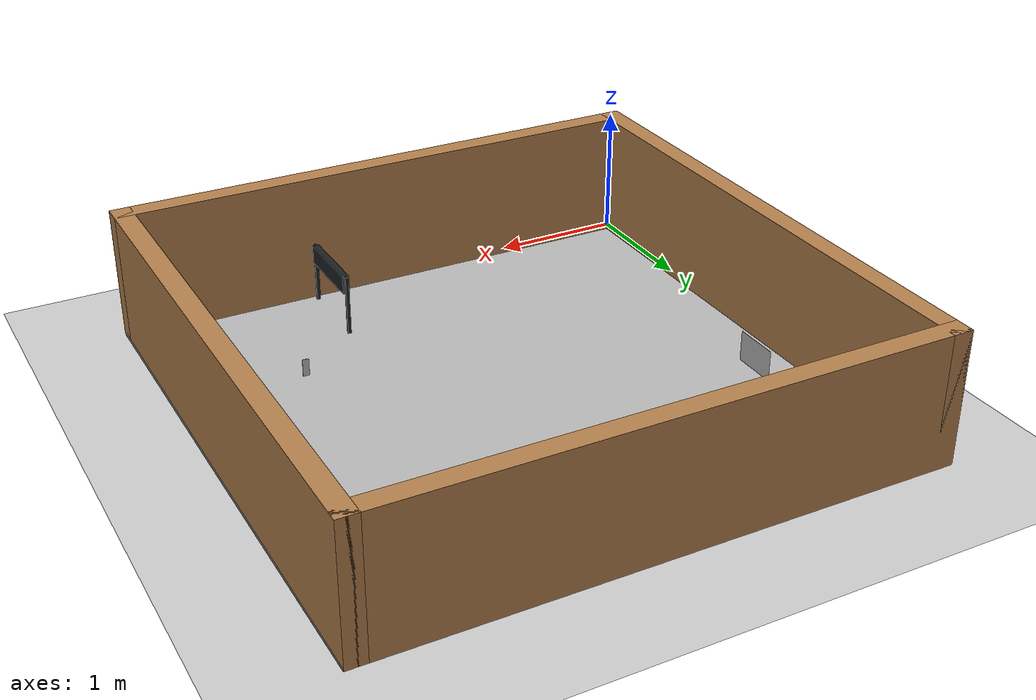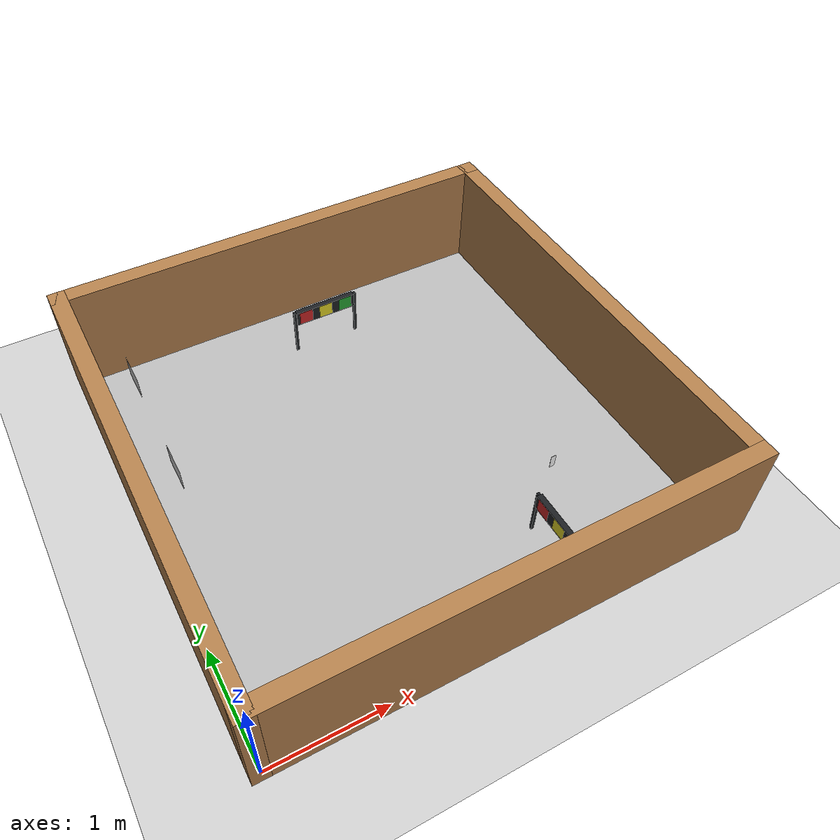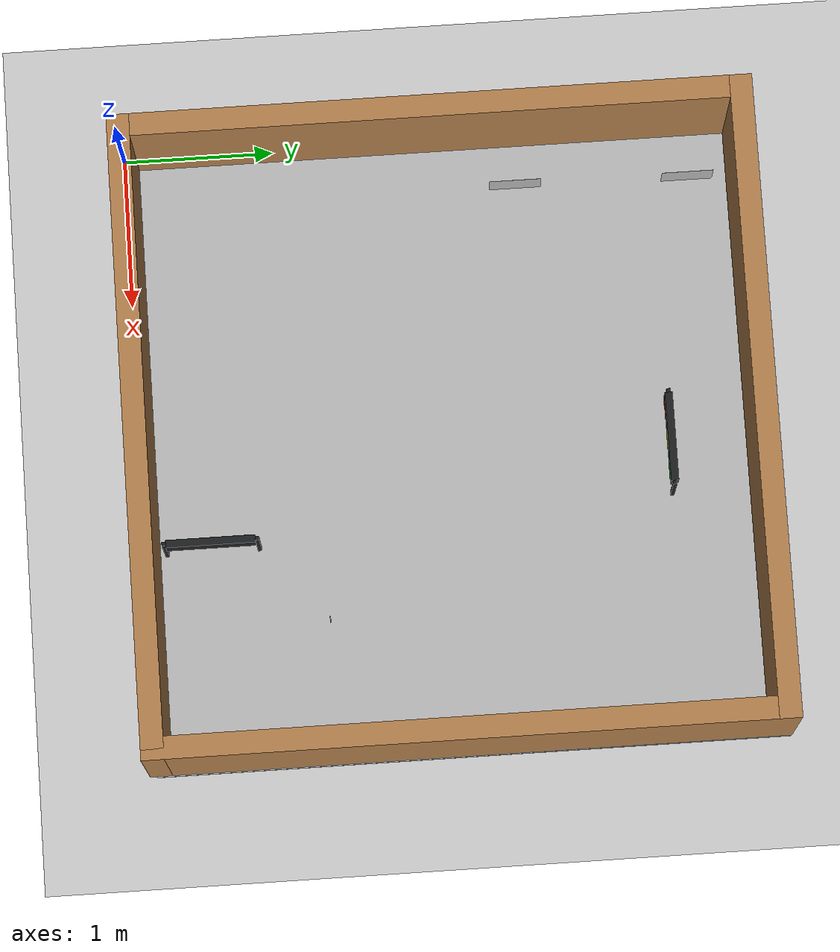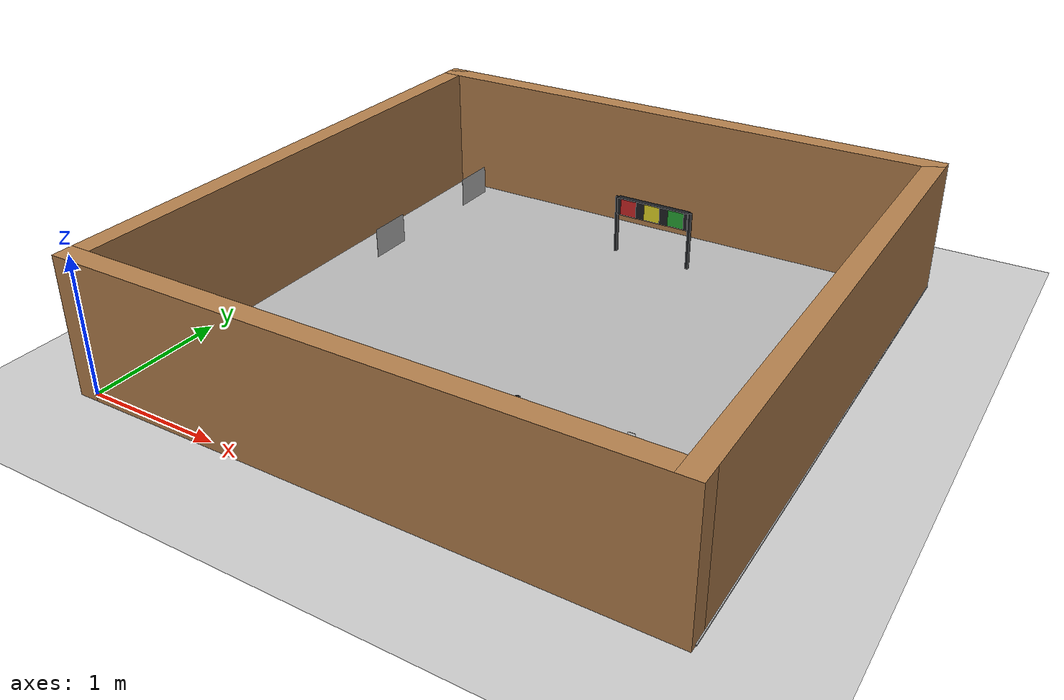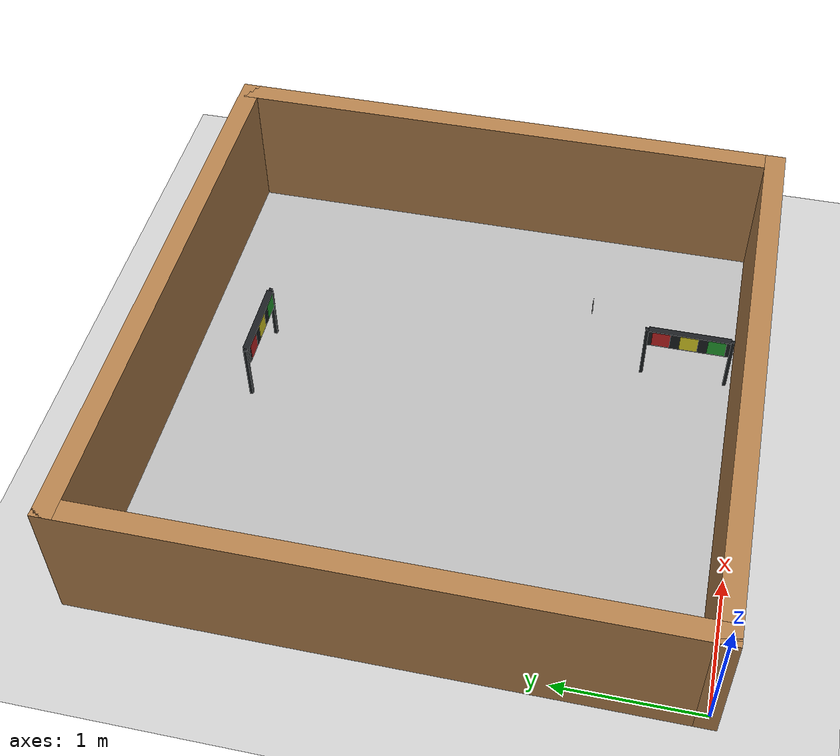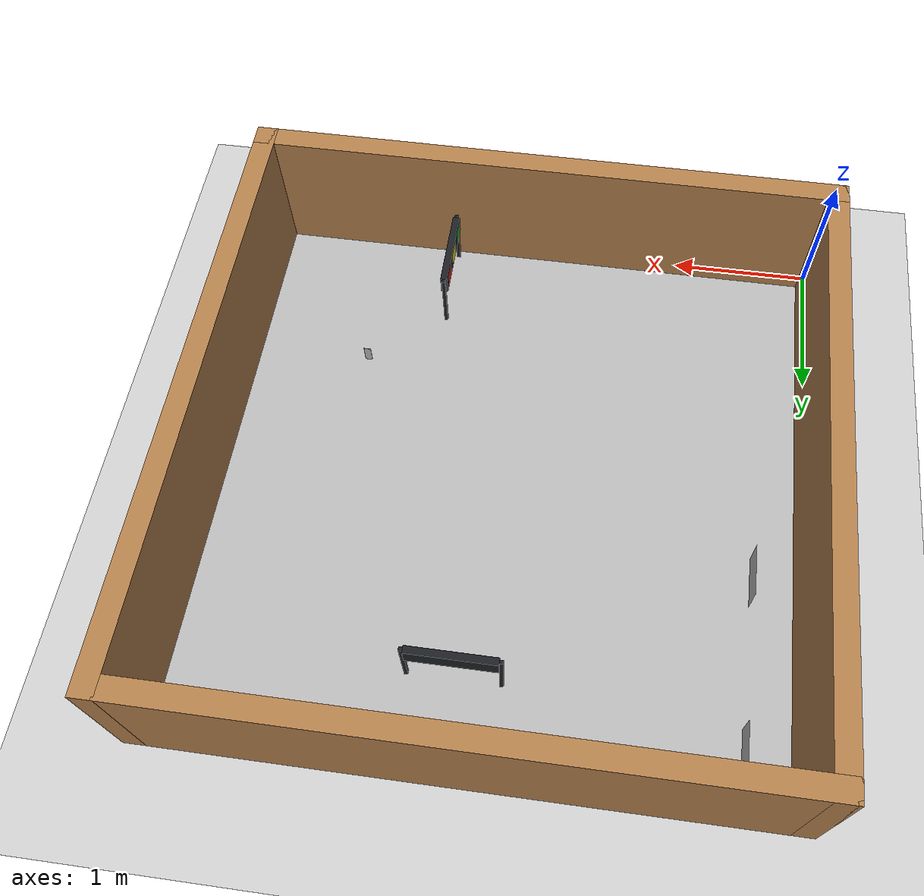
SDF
<sdf version="1.7">
 <world name="default">
  <light name="sun" type="directional">
   <pose>0 0 10 0 -0 0</pose>
   <diffuse>0.8 0.8 0.8 1</diffuse>
   <specular>0.2 0.2 0.2 1</specular>
   <attenuation>
    <range>1000</range>
    <constant>0.9</constant>
    <linear>0.01</linear>
    <quadratic>0.001</quadratic>
   </attenuation>
   <direction>-0.5 0.1 -0.9</direction>
   <spot><inner_angle>0</inner_angle><outer_angle>0</outer_angle><falloff>0</falloff></spot>
  </light>
  <light name="side_light" type="point">
   <pose>3 2 1 0 -0 0</pose>
   <diffuse>1 1 1 1</diffuse>
   <attenuation><linear>0</linear><quadratic>0</quadratic><range>6</range></attenuation>
   <direction>0 0 -1</direction>
   <spot><inner_angle>0</inner_angle><outer_angle>0</outer_angle><falloff>0</falloff></spot>
   <range>3.0</range>
  </light>
  <model name="ground_plane">
   <static>1</static>
   <link name="link">
    <collision name="collision">
     <geometry><plane><normal>0 0 1</normal><size>100 100</size></plane></geometry>
     <surface><friction><ode><mu>100</mu><mu2>50</mu2></ode></friction></surface>
    </collision>
    <visual name="visual">
     <geometry><plane><normal>0 0 1</normal><size>100 100</size></plane></geometry>
     <material>
      <script><uri>file://media/materials/scripts/gazebo.material</uri><name>Gazebo/Grey</name></script>
     </material>
    </visual>
   </link>
  </model>
  <gravity>0 0 -9.8</gravity>
  <magnetic_field>6e-06 2.3e-05 -4.2e-05</magnetic_field>
  <atmosphere type="adiabatic"/>
  <physics type="ode">
   <max_step_size>0.001</max_step_size>
   <real_time_factor>1</real_time_factor>
   <real_time_update_rate>1000</real_time_update_rate>
  </physics>
  <scene><ambient>0.4 0.4 0.4 1</ambient><background>0.7 0.7 0.7 1</background><shadows>1</shadows></scene>
  <spherical_coordinates>
   <surface_model>EARTH_WGS84</surface_model>
   <latitude_deg>0</latitude_deg>
   <longitude_deg>0</longitude_deg>
   <elevation>0</elevation>
   <heading_deg>0</heading_deg>
  </spherical_coordinates>
  <model name="square.world">
   <pose>2.04333 2.07117 0 0 -0 0</pose>
   <link name="Wall_6">
    <collision name="Wall_6_Collision">
     <geometry><box><size>4.26 0.15 1</size></box></geometry>
     <pose>0 0 0.5 0 -0 0</pose>
    </collision>
    <visual name="Wall_6_Visual">
     <pose>0 0 0.5 0 -0 0</pose>
     <geometry><box><size>4.26 0.15 1</size></box></geometry>
     <material>
      <script><uri>file://media/materials/scripts/gazebo.material</uri><name>Gazebo/Wood</name></script>
      <ambient>1 1 1 1</ambient>
     </material>
     <meta><layer>0</layer></meta>
    </visual>
    <pose>-0 2.05 0 0 -0 0</pose>
   </link>
   <link name="Wall_7">
    <collision name="Wall_7_Collision">
     <geometry><box><size>4.25 0.15 1</size></box></geometry>
     <pose>0 0 0.5 0 -0 0</pose>
    </collision>
    <visual name="Wall_7_Visual">
     <pose>0 0 0.5 0 -0 0</pose>
     <geometry><box><size>4.25 0.15 1</size></box></geometry>
     <material>
      <script><uri>file://media/materials/scripts/gazebo.material</uri><name>Gazebo/Wood</name></script>
      <ambient>1 1 1 1</ambient>
     </material>
     <meta><layer>0</layer></meta>
    </visual>
    <pose>2.055 0 0 0 -0 -1.5708</pose>
   </link>
   <link name="Wall_8">
    <collision name="Wall_8_Collision">
     <geometry><box><size>4.26 0.15 1</size></box></geometry>
     <pose>0 0 0.5 0 -0 0</pose>
    </collision>
    <visual name="Wall_8_Visual">
     <pose>0 0 0.5 0 -0 0</pose>
     <geometry><box><size>4.26 0.15 1</size></box></geometry>
     <material>
      <script><uri>file://media/materials/scripts/gazebo.material</uri><name>Gazebo/Wood</name></script>
      <ambient>1 1 1 1</ambient>
     </material>
     <meta><layer>0</layer></meta>
    </visual>
    <pose>-0 -2.05 0 0 -0 3.14159</pose>
   </link>
   <link name="Wall_9">
    <collision name="Wall_9_Collision">
     <geometry><box><size>4.25 0.15 1</size></box></geometry>
     <pose>0 0 0.5 0 -0 0</pose>
    </collision>
    <visual name="Wall_9_Visual">
     <pose>0 0 0.5 0 -0 0</pose>
     <geometry><box><size>4.25 0.15 1</size></box></geometry>
     <material>
      <script><uri>file://media/materials/scripts/gazebo.material</uri><name>Gazebo/Wood</name></script>
      <ambient>1 1 1 1</ambient>
     </material>
     <meta><layer>0</layer></meta>
    </visual>
    <pose>-2.055 0 0 0 -0 1.5708</pose>
   </link>
   <static>1</static>
  </model>
  <model name="com_map">
   <pose>2.07915 2.09037 0.01 0 0 -1.57</pose>
   <static>1</static>
   <link name="link">
    <inertial>
     <mass>0.5</mass>
     <inertia><ixx>0.001</ixx><ixy>0</ixy><ixz>0</ixz><iyy>0.001</iyy><iyz>0</iyz><izz>0.001</izz></inertia>
    </inertial>
    <collision name="collision">
     <geometry><box><size>4.2 4.2 0.01</size></box></geometry>
     <max_contacts>100</max_contacts>
    </collision>
    <visual name="visual">
     <geometry><box><size>4.2 4.2 0.01</size></box></geometry>
     <material>
      <script>
       <uri>model://com_map/materials/scripts</uri>
       <uri>model://com_map/materials/textures</uri>
       <name>MyGround/com_map</name>
      </script>
     </material>
    </visual>
   </link>
  </model>
  <model name="cp1">
   <static>1</static>
   <link name="link">
    <visual name="visual">
     <geometry><mesh><uri>model://cp1/meshes/cp.dae</uri><scale>0.492857 0.0125 0.5</scale></mesh></geometry>
    </visual>
    <collision name="collision">
     <pose>0 0 0.125 0 -0 0</pose>
     <geometry><box><size>0.345 0.0005 0.25</size></box></geometry>
    </collision>
   </link>
   <pose>0.352093 2.62015 0 0 -0 1.56921</pose>
  </model>
  <model name="cp2">
   <static>1</static>
   <link name="link">
    <visual name="visual">
     <geometry><mesh><uri>model://cp2/meshes/cp.dae</uri><scale>0.492857 0.0125 0.5</scale></mesh></geometry>
    </visual>
    <collision name="collision">
     <pose>0 0 0.125 0 -0 0</pose>
     <geometry><box><size>0.345 0.0005 0.25</size></box></geometry>
    </collision>
   </link>
   <pose>0.368511 3.77861 0 0 -0 1.57</pose>
  </model>
  <model name="traffic_light">
   <static>0</static>
   <link name="body">
    <gravity>0</gravity>
    <visual name="housing">
     <pose>0 0 0.41 0 -0 0</pose>
     <geometry><box><size>0.59 0.05 0.14</size></box></geometry>
     <material><ambient>0.07 0.08 0.09 1</ambient><diffuse>0.11 0.12 0.13 1</diffuse></material>
    </visual>
    <collision name="housing_collision">
     <pose>0 0 0.41 0 -0 0</pose>
     <geometry><box><size>0.59 0.05 0.14</size></box></geometry>
    </collision>
    <visual name="left_leg">
     <pose>-0.3075 0 0.24 0 -0 0</pose>
     <geometry><box><size>0.025 0.025 0.48</size></box></geometry>
     <material><ambient>0.07 0.08 0.09 1</ambient><diffuse>0.11 0.12 0.13 1</diffuse></material>
    </visual>
    <collision name="left_leg_collision">
     <pose>-0.3075 0 0.24 0 -0 0</pose>
     <geometry><box><size>0.025 0.025 0.48</size></box></geometry>
    </collision>
    <visual name="right_leg">
     <pose>0.3075 0 0.24 0 -0 0</pose>
     <geometry><box><size>0.025 0.025 0.48</size></box></geometry>
     <material><ambient>0.07 0.08 0.09 1</ambient><diffuse>0.11 0.12 0.13 1</diffuse></material>
    </visual>
    <collision name="right_leg_collision">
     <pose>0.3075 0 0.24 0 -0 0</pose>
     <geometry><box><size>0.025 0.025 0.48</size></box></geometry>
    </collision>
    <visual name="red_lamp">
     <pose>-0.2 -0.026 0.41 1.5708 -0 0</pose>
     <geometry><plane><normal>0 0 1</normal><size>0.13 0.13</size></plane></geometry>
     <material>
      <script>
       <uri>model://traffic_light/materials/scripts</uri>
       <uri>model://traffic_light/materials/textures</uri>
       <name>TrafficLight/RedOn</name>
      </script>
     </material>
     <cast_shadows>0</cast_shadows>
    </visual>
    <visual name="yellow_lamp">
     <pose>0 -0.026 0.41 1.5708 -0 0</pose>
     <geometry><plane><normal>0 0 1</normal><size>0.13 0.13</size></plane></geometry>
     <material>
      <script>
       <uri>model://traffic_light/materials/scripts</uri>
       <uri>model://traffic_light/materials/textures</uri>
       <name>TrafficLight/YellowDark</name>
      </script>
     </material>
     <cast_shadows>0</cast_shadows>
    </visual>
    <visual name="green_lamp">
     <pose>0.2 -0.026 0.41 1.5708 -0 0</pose>
     <geometry><plane><normal>0 0 1</normal><size>0.13 0.13</size></plane></geometry>
     <material>
      <script>
       <uri>model://traffic_light/materials/scripts</uri>
       <uri>model://traffic_light/materials/textures</uri>
       <name>TrafficLight/GreenDark</name>
      </script>
     </material>
     <cast_shadows>0</cast_shadows>
    </visual>
    <kinematic>1</kinematic>
    <inertial>
     <inertia><ixx>1</ixx><ixy>0</ixy><ixz>0</ixz><iyy>1</iyy><iyz>0</iyz><izz>1</izz></inertia>
     <mass>1</mass>
    </inertial>
   </link>
   <plugin name="traffic_light_controller" filename="libtraffic_light_controller.so">
    <red_duration>10</red_duration>
    <green_duration>15</green_duration>
    <yellow_duration>5</yellow_duration>
   </plugin>
   <pose>2.2 3.52475 0 0 -0 0</pose>
  </model>
  <model name="traffic_light_0">
   <static>0</static>
   <link name="body">
    <gravity>0</gravity>
    <kinematic>1</kinematic>
    <visual name="housing">
     <pose>0 0 0.41 0 -0 0</pose>
     <geometry><box><size>0.59 0.05 0.14</size></box></geometry>
     <material><ambient>0.07 0.08 0.09 1</ambient><diffuse>0.11 0.12 0.13 1</diffuse></material>
    </visual>
    <collision name="housing_collision">
     <pose>0 0 0.41 0 -0 0</pose>
     <geometry><box><size>0.59 0.05 0.14</size></box></geometry>
    </collision>
    <visual name="left_leg">
     <pose>-0.3075 0 0.24 0 -0 0</pose>
     <geometry><box><size>0.025 0.025 0.48</size></box></geometry>
     <material><ambient>0.07 0.08 0.09 1</ambient><diffuse>0.11 0.12 0.13 1</diffuse></material>
    </visual>
    <collision name="left_leg_collision">
     <pose>-0.3075 0 0.24 0 -0 0</pose>
     <geometry><box><size>0.025 0.025 0.48</size></box></geometry>
    </collision>
    <visual name="right_leg">
     <pose>0.3075 0 0.24 0 -0 0</pose>
     <geometry><box><size>0.025 0.025 0.48</size></box></geometry>
     <material><ambient>0.07 0.08 0.09 1</ambient><diffuse>0.11 0.12 0.13 1</diffuse></material>
    </visual>
    <collision name="right_leg_collision">
     <pose>0.3075 0 0.24 0 -0 0</pose>
     <geometry><box><size>0.025 0.025 0.48</size></box></geometry>
    </collision>
    <visual name="red_lamp">
     <pose>-0.2 -0.026 0.41 1.5708 -0 0</pose>
     <geometry><plane><normal>0 0 1</normal><size>0.13 0.13</size></plane></geometry>
     <material>
      <script>
       <uri>model://traffic_light/materials/scripts</uri>
       <uri>model://traffic_light/materials/textures</uri>
       <name>TrafficLight/RedOn</name>
      </script>
     </material>
     <cast_shadows>0</cast_shadows>
    </visual>
    <visual name="yellow_lamp">
     <pose>0 -0.026 0.41 1.5708 -0 0</pose>
     <geometry><plane><normal>0 0 1</normal><size>0.13 0.13</size></plane></geometry>
     <material>
      <script>
       <uri>model://traffic_light/materials/scripts</uri>
       <uri>model://traffic_light/materials/textures</uri>
       <name>TrafficLight/YellowDark</name>
      </script>
     </material>
     <cast_shadows>0</cast_shadows>
    </visual>
    <visual name="green_lamp">
     <pose>0.2 -0.026 0.41 1.5708 -0 0</pose>
     <geometry><plane><normal>0 0 1</normal><size>0.13 0.13</size></plane></geometry>
     <material>
      <script>
       <uri>model://traffic_light/materials/scripts</uri>
       <uri>model://traffic_light/materials/textures</uri>
       <name>TrafficLight/GreenDark</name>
      </script>
     </material>
     <cast_shadows>0</cast_shadows>
    </visual>
    <inertial>
     <inertia><ixx>1</ixx><ixy>0</ixy><ixz>0</ixz><iyy>1</iyy><iyz>0</iyz><izz>1</izz></inertia>
     <mass>1</mass>
    </inertial>
   </link>
   <plugin name="traffic_light_controller" filename="libtraffic_light_controller.so">
    <red_duration>10</red_duration>
    <green_duration>15</green_duration>
    <yellow_duration>5</yellow_duration>
   </plugin>
   <pose>2.7 0.45 0 0 0 -1.57</pose>
  </model>
  <model name="person_noncommunity_f2_0">
   <static>1</static>
   <link name="link">
    <visual name="visual">
     <geometry><mesh><uri>model://person_noncommunity_f2/meshes/person_noncommunity_f2.dae</uri></mesh></geometry>
     <material>
      <script>
       <uri>model://person_noncommunity_f2/materials/scripts</uri>
       <uri>model://person_noncommunity_f2/materials/textures</uri>
       <name>PersonNoncommunityF2</name>
      </script>
     </material>
    </visual>
    <visual name="white_back">
     <geometry>
      <mesh><uri>model://person_noncommunity_f2/meshes/person_noncommunity_f2_back.dae</uri></mesh>
     </geometry>
     <material>
      <lighting>0</lighting>
      <ambient>1 1 1 1</ambient>
      <diffuse>1 1 1 1</diffuse>
      <emissive>1 1 1 1</emissive>
      <specular>0 0 0 1</specular>
     </material>
    </visual>
    <collision name="collision">
     <geometry><box><size>0.05 0.005 0.15</size></box></geometry>
     <pose>0 0 0.075 0 -0 0</pose>
    </collision>
   </link>
   <pose>3.21378 1.19982 0 0 -0 3.14</pose>
  </model>
 </world>
</sdf>
